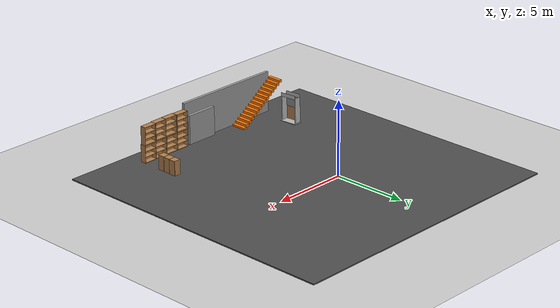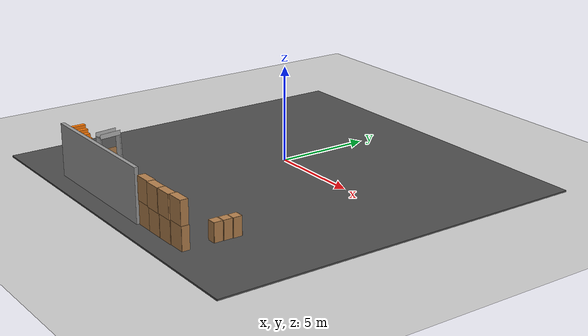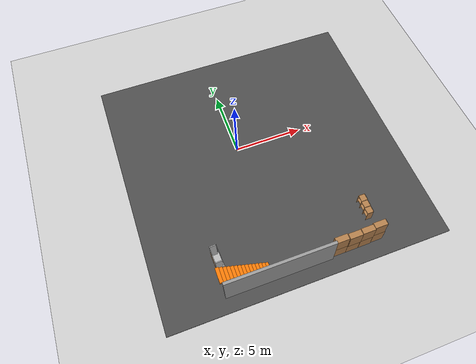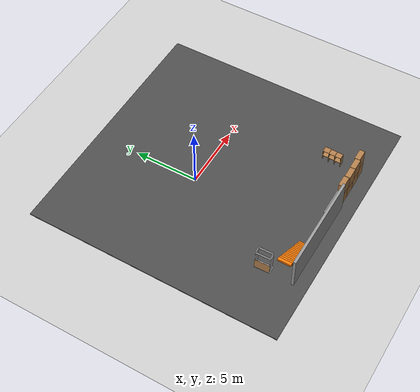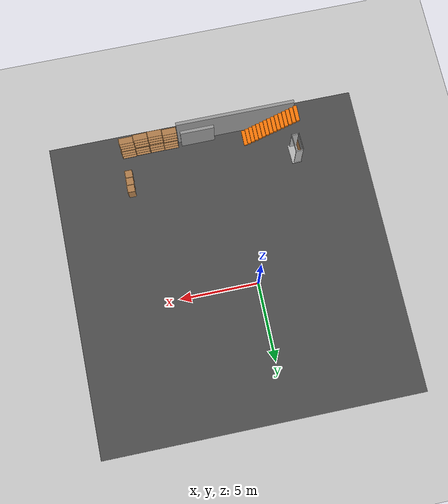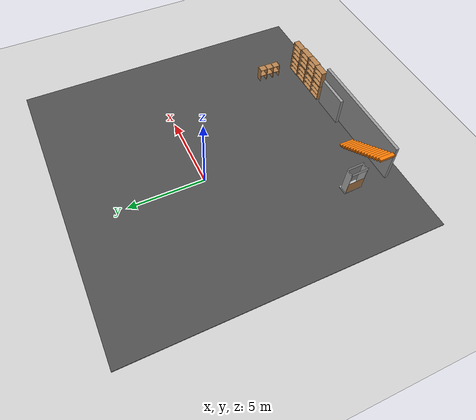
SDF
<sdf version="1.6">
 <world name="default">
  <model name="ground_plane">
   <static>1</static>
   <link name="link">
    <collision name="collision">
     <geometry><plane><normal>0 0 1</normal><size>100 100</size></plane></geometry>
     <surface>
      <contact><collide_bitmask>65535</collide_bitmask></contact>
      <friction><ode><mu>100</mu><mu2>50</mu2></ode></friction>
     </surface>
    </collision>
    <visual name="visual">
     <cast_shadows>0</cast_shadows>
     <geometry><plane><normal>0 0 1</normal><size>100 100</size></plane></geometry>
     <material>
      <script><uri>file://media/materials/scripts/gazebo.material</uri><name>Gazebo/Grey</name></script>
     </material>
    </visual>
   </link>
  </model>
  <model name="frc2016_drawbridge">
   <link name="base">
    <inertial>
     <mass>10</mass>
     <pose>0 0 1 0 -0 0</pose>
     <inertia><ixx>3.64907</ixx><ixy>0</ixy><ixz>0</ixz><iyy>4.67075</iyy><iyz>0</iyz><izz>1.66649</izz></inertia>
    </inertial>
    <visual name="platform">
     <pose>0 0 0.0425 0 -0 0</pose>
     <geometry><box><size>1.27 0.5969 0.085</size></box></geometry>
    </visual>
    <collision name="platform">
     <pose>0 0 0.0425 0 -0 0</pose>
     <geometry><box><size>1.27 0.5969 0.085</size></box></geometry>
    </collision>
    <visual name="right_wall">
     <pose>0.55879 0.04444 0.889 0 -0 0</pose>
     <geometry><box><size>0.05715 0.45698 1.77165</size></box></geometry>
    </visual>
    <collision name="right_wall">
     <pose>0.55879 0.04444 0.889 0 -0 0</pose>
     <geometry><box><size>0.05715 0.45698 1.77165</size></box></geometry>
    </collision>
    <visual name="left_wall">
     <pose>-0.55879 0.04444 0.889 0 -0 0</pose>
     <geometry><box><size>0.05715 0.45698 1.77165</size></box></geometry>
    </visual>
    <collision name="left_wall">
     <pose>-0.55879 0.04444 0.889 0 -0 0</pose>
     <geometry><box><size>0.05715 0.45698 1.77165</size></box></geometry>
    </collision>
    <visual name="front_upper_wall">
     <pose>0 0.27611 1.84286 0 -0 0</pose>
     <geometry><box><size>1.1557 0.006347 0.254</size></box></geometry>
    </visual>
    <collision name="front_upper_wall">
     <pose>0 0.27611 1.84286 0 -0 0</pose>
     <geometry><box><size>1.1557 0.006347 0.254</size></box></geometry>
    </collision>
    <visual name="back_upper_wall">
     <pose>0 -0.18722 1.84286 0 -0 0</pose>
     <geometry><box><size>1.1557 0.006347 0.254</size></box></geometry>
    </visual>
    <collision name="back_upper_wall">
     <pose>0 -0.18722 1.84286 0 -0 0</pose>
     <geometry><box><size>1.1557 0.006347 0.254</size></box></geometry>
    </collision>
   </link>
   <link name="bridge">
    <pose>0 0.28245 0.50577 0 -0 0</pose>
    <inertial>
     <mass>2</mass>
     <pose>0 -0.28245 -0.50577 0 -0 0</pose>
     <inertia>
      <ixx>0.139361</ixx>
      <ixy>0</ixy>
      <ixz>0</ixz>
      <iyy>0.357088</iyy>
      <iyz>0</iyz>
      <izz>0.217741</izz>
     </inertia>
    </inertial>
    <visual name="visual">
     <geometry><box><size>1.14298 0.006347 0.9144</size></box></geometry>
     <material><script><name>Gazebo/WoodFloor</name><uri>__default__</uri></script></material>
    </visual>
    <collision name="collision"><geometry><box><size>1.14298 0.006347 0.9144</size></box></geometry></collision>
   </link>
   <joint name="bridge_joint" type="revolute">
    <pose>0 0 -0.4172 0 -0 0</pose>
    <parent>base</parent>
    <child>bridge</child>
    <axis>
     <xyz>1 0 0</xyz>
     <limit><lower>-2</lower><upper>0</upper></limit>
     <use_parent_model_frame>0</use_parent_model_frame>
     <dynamics><spring_reference>0</spring_reference><spring_stiffness>0</spring_stiffness></dynamics>
    </axis>
   </joint>
   <pose>-4.11079 -7.91679 0 -0.010755 -0.031899 1.61279</pose>
  </model>
  <model name="bookshelf">
   <static>1</static>
   <link name="link">
    <inertial><mass>1</mass></inertial>
    <collision name="back">
     <pose>0 0.005 0.6 0 -0 0</pose>
     <geometry><box><size>0.9 0.01 1.2</size></box></geometry>
    </collision>
    <visual name="visual1">
     <pose>0 0.005 0.6 0 -0 0</pose>
     <geometry><box><size>0.9 0.01 1.2</size></box></geometry>
     <material>
      <script><uri>file://media/materials/scripts/gazebo.material</uri><name>Gazebo/Wood</name></script>
     </material>
    </visual>
    <collision name="left_side">
     <pose>0.45 -0.195 0.6 0 -0 0</pose>
     <geometry><box><size>0.02 0.4 1.2</size></box></geometry>
    </collision>
    <visual name="visual2">
     <pose>0.45 -0.195 0.6 0 -0 0</pose>
     <geometry><box><size>0.02 0.4 1.2</size></box></geometry>
     <material>
      <script><uri>file://media/materials/scripts/gazebo.material</uri><name>Gazebo/Wood</name></script>
     </material>
    </visual>
    <collision name="right_side">
     <pose>-0.45 -0.195 0.6 0 -0 0</pose>
     <geometry><box><size>0.02 0.4 1.2</size></box></geometry>
    </collision>
    <visual name="visual3">
     <pose>-0.45 -0.195 0.6 0 -0 0</pose>
     <geometry><box><size>0.02 0.4 1.2</size></box></geometry>
     <material>
      <script><uri>file://media/materials/scripts/gazebo.material</uri><name>Gazebo/Wood</name></script>
     </material>
    </visual>
    <collision name="bottom">
     <pose>0 -0.195 0.03 0 -0 0</pose>
     <geometry><box><size>0.88 0.4 0.06</size></box></geometry>
    </collision>
    <visual name="visual4">
     <pose>0 -0.195 0.03 0 -0 0</pose>
     <geometry><box><size>0.88 0.4 0.06</size></box></geometry>
     <material>
      <script><uri>file://media/materials/scripts/gazebo.material</uri><name>Gazebo/Wood</name></script>
     </material>
    </visual>
    <collision name="top">
     <pose>0 -0.195 1.19 0 -0 0</pose>
     <geometry><box><size>0.88 0.4 0.02</size></box></geometry>
    </collision>
    <visual name="visual5">
     <pose>0 -0.195 1.19 0 -0 0</pose>
     <geometry><box><size>0.88 0.4 0.02</size></box></geometry>
     <material>
      <script><uri>file://media/materials/scripts/gazebo.material</uri><name>Gazebo/Wood</name></script>
     </material>
    </visual>
    <collision name="low_shelf">
     <pose>0 -0.195 0.43 0 -0 0</pose>
     <geometry><box><size>0.88 0.4 0.02</size></box></geometry>
    </collision>
    <visual name="visual6">
     <pose>0 -0.195 0.43 0 -0 0</pose>
     <geometry><box><size>0.88 0.4 0.02</size></box></geometry>
     <material>
      <script><uri>file://media/materials/scripts/gazebo.material</uri><name>Gazebo/Wood</name></script>
     </material>
    </visual>
    <collision name="high_shelf">
     <pose>0 -0.195 0.8 0 -0 0</pose>
     <geometry><box><size>0.88 0.4 0.02</size></box></geometry>
    </collision>
    <visual name="visual7">
     <pose>0 -0.195 0.8 0 -0 0</pose>
     <geometry><box><size>0.88 0.4 0.02</size></box></geometry>
     <material>
      <script><uri>file://media/materials/scripts/gazebo.material</uri><name>Gazebo/Wood</name></script>
     </material>
    </visual>
   </link>
   <pose>6.34692 -10.2259 0.027497 0 0 -3.13702</pose>
  </model>
  <model name="bookshelf_clone">
   <static>1</static>
   <link name="link">
    <inertial><mass>1</mass></inertial>
    <collision name="back">
     <pose>0 0.005 0.6 0 -0 0</pose>
     <geometry><box><size>0.9 0.01 1.2</size></box></geometry>
    </collision>
    <visual name="visual1">
     <pose>0 0.005 0.6 0 -0 0</pose>
     <geometry><box><size>0.9 0.01 1.2</size></box></geometry>
     <material>
      <script><uri>file://media/materials/scripts/gazebo.material</uri><name>Gazebo/Wood</name></script>
     </material>
    </visual>
    <collision name="left_side">
     <pose>0.45 -0.195 0.6 0 -0 0</pose>
     <geometry><box><size>0.02 0.4 1.2</size></box></geometry>
    </collision>
    <visual name="visual2">
     <pose>0.45 -0.195 0.6 0 -0 0</pose>
     <geometry><box><size>0.02 0.4 1.2</size></box></geometry>
     <material>
      <script><uri>file://media/materials/scripts/gazebo.material</uri><name>Gazebo/Wood</name></script>
     </material>
    </visual>
    <collision name="right_side">
     <pose>-0.45 -0.195 0.6 0 -0 0</pose>
     <geometry><box><size>0.02 0.4 1.2</size></box></geometry>
    </collision>
    <visual name="visual3">
     <pose>-0.45 -0.195 0.6 0 -0 0</pose>
     <geometry><box><size>0.02 0.4 1.2</size></box></geometry>
     <material>
      <script><uri>file://media/materials/scripts/gazebo.material</uri><name>Gazebo/Wood</name></script>
     </material>
    </visual>
    <collision name="bottom">
     <pose>0 -0.195 0.03 0 -0 0</pose>
     <geometry><box><size>0.88 0.4 0.06</size></box></geometry>
    </collision>
    <visual name="visual4">
     <pose>0 -0.195 0.03 0 -0 0</pose>
     <geometry><box><size>0.88 0.4 0.06</size></box></geometry>
     <material>
      <script><uri>file://media/materials/scripts/gazebo.material</uri><name>Gazebo/Wood</name></script>
     </material>
    </visual>
    <collision name="top">
     <pose>0 -0.195 1.19 0 -0 0</pose>
     <geometry><box><size>0.88 0.4 0.02</size></box></geometry>
    </collision>
    <visual name="visual5">
     <pose>0 -0.195 1.19 0 -0 0</pose>
     <geometry><box><size>0.88 0.4 0.02</size></box></geometry>
     <material>
      <script><uri>file://media/materials/scripts/gazebo.material</uri><name>Gazebo/Wood</name></script>
     </material>
    </visual>
    <collision name="low_shelf">
     <pose>0 -0.195 0.43 0 -0 0</pose>
     <geometry><box><size>0.88 0.4 0.02</size></box></geometry>
    </collision>
    <visual name="visual6">
     <pose>0 -0.195 0.43 0 -0 0</pose>
     <geometry><box><size>0.88 0.4 0.02</size></box></geometry>
     <material>
      <script><uri>file://media/materials/scripts/gazebo.material</uri><name>Gazebo/Wood</name></script>
     </material>
    </visual>
    <collision name="high_shelf">
     <pose>0 -0.195 0.8 0 -0 0</pose>
     <geometry><box><size>0.88 0.4 0.02</size></box></geometry>
    </collision>
    <visual name="visual7">
     <pose>0 -0.195 0.8 0 -0 0</pose>
     <geometry><box><size>0.88 0.4 0.02</size></box></geometry>
     <material>
      <script><uri>file://media/materials/scripts/gazebo.material</uri><name>Gazebo/Wood</name></script>
     </material>
    </visual>
   </link>
   <pose>5.43755 -10.2582 0.027497 0 0 -3.13702</pose>
  </model>
  <model name="bookshelf_clone_clone">
   <static>1</static>
   <link name="link">
    <inertial><mass>1</mass></inertial>
    <collision name="back">
     <pose>0 0.005 0.6 0 -0 0</pose>
     <geometry><box><size>0.9 0.01 1.2</size></box></geometry>
    </collision>
    <visual name="visual1">
     <pose>0 0.005 0.6 0 -0 0</pose>
     <geometry><box><size>0.9 0.01 1.2</size></box></geometry>
     <material>
      <script><uri>file://media/materials/scripts/gazebo.material</uri><name>Gazebo/Wood</name></script>
     </material>
    </visual>
    <collision name="left_side">
     <pose>0.45 -0.195 0.6 0 -0 0</pose>
     <geometry><box><size>0.02 0.4 1.2</size></box></geometry>
    </collision>
    <visual name="visual2">
     <pose>0.45 -0.195 0.6 0 -0 0</pose>
     <geometry><box><size>0.02 0.4 1.2</size></box></geometry>
     <material>
      <script><uri>file://media/materials/scripts/gazebo.material</uri><name>Gazebo/Wood</name></script>
     </material>
    </visual>
    <collision name="right_side">
     <pose>-0.45 -0.195 0.6 0 -0 0</pose>
     <geometry><box><size>0.02 0.4 1.2</size></box></geometry>
    </collision>
    <visual name="visual3">
     <pose>-0.45 -0.195 0.6 0 -0 0</pose>
     <geometry><box><size>0.02 0.4 1.2</size></box></geometry>
     <material>
      <script><uri>file://media/materials/scripts/gazebo.material</uri><name>Gazebo/Wood</name></script>
     </material>
    </visual>
    <collision name="bottom">
     <pose>0 -0.195 0.03 0 -0 0</pose>
     <geometry><box><size>0.88 0.4 0.06</size></box></geometry>
    </collision>
    <visual name="visual4">
     <pose>0 -0.195 0.03 0 -0 0</pose>
     <geometry><box><size>0.88 0.4 0.06</size></box></geometry>
     <material>
      <script><uri>file://media/materials/scripts/gazebo.material</uri><name>Gazebo/Wood</name></script>
     </material>
    </visual>
    <collision name="top">
     <pose>0 -0.195 1.19 0 -0 0</pose>
     <geometry><box><size>0.88 0.4 0.02</size></box></geometry>
    </collision>
    <visual name="visual5">
     <pose>0 -0.195 1.19 0 -0 0</pose>
     <geometry><box><size>0.88 0.4 0.02</size></box></geometry>
     <material>
      <script><uri>file://media/materials/scripts/gazebo.material</uri><name>Gazebo/Wood</name></script>
     </material>
    </visual>
    <collision name="low_shelf">
     <pose>0 -0.195 0.43 0 -0 0</pose>
     <geometry><box><size>0.88 0.4 0.02</size></box></geometry>
    </collision>
    <visual name="visual6">
     <pose>0 -0.195 0.43 0 -0 0</pose>
     <geometry><box><size>0.88 0.4 0.02</size></box></geometry>
     <material>
      <script><uri>file://media/materials/scripts/gazebo.material</uri><name>Gazebo/Wood</name></script>
     </material>
    </visual>
    <collision name="high_shelf">
     <pose>0 -0.195 0.8 0 -0 0</pose>
     <geometry><box><size>0.88 0.4 0.02</size></box></geometry>
    </collision>
    <visual name="visual7">
     <pose>0 -0.195 0.8 0 -0 0</pose>
     <geometry><box><size>0.88 0.4 0.02</size></box></geometry>
     <material>
      <script><uri>file://media/materials/scripts/gazebo.material</uri><name>Gazebo/Wood</name></script>
     </material>
    </visual>
   </link>
   <pose>4.50546 -10.2639 0.027497 0 0 -3.13702</pose>
  </model>
  <model name="bookshelf_clone_clone_0">
   <static>1</static>
   <link name="link">
    <inertial><mass>1</mass></inertial>
    <collision name="back">
     <pose>0 0.005 0.6 0 -0 0</pose>
     <geometry><box><size>0.9 0.01 1.2</size></box></geometry>
    </collision>
    <visual name="visual1">
     <pose>0 0.005 0.6 0 -0 0</pose>
     <geometry><box><size>0.9 0.01 1.2</size></box></geometry>
     <material>
      <script><uri>file://media/materials/scripts/gazebo.material</uri><name>Gazebo/Wood</name></script>
     </material>
    </visual>
    <collision name="left_side">
     <pose>0.45 -0.195 0.6 0 -0 0</pose>
     <geometry><box><size>0.02 0.4 1.2</size></box></geometry>
    </collision>
    <visual name="visual2">
     <pose>0.45 -0.195 0.6 0 -0 0</pose>
     <geometry><box><size>0.02 0.4 1.2</size></box></geometry>
     <material>
      <script><uri>file://media/materials/scripts/gazebo.material</uri><name>Gazebo/Wood</name></script>
     </material>
    </visual>
    <collision name="right_side">
     <pose>-0.45 -0.195 0.6 0 -0 0</pose>
     <geometry><box><size>0.02 0.4 1.2</size></box></geometry>
    </collision>
    <visual name="visual3">
     <pose>-0.45 -0.195 0.6 0 -0 0</pose>
     <geometry><box><size>0.02 0.4 1.2</size></box></geometry>
     <material>
      <script><uri>file://media/materials/scripts/gazebo.material</uri><name>Gazebo/Wood</name></script>
     </material>
    </visual>
    <collision name="bottom">
     <pose>0 -0.195 0.03 0 -0 0</pose>
     <geometry><box><size>0.88 0.4 0.06</size></box></geometry>
    </collision>
    <visual name="visual4">
     <pose>0 -0.195 0.03 0 -0 0</pose>
     <geometry><box><size>0.88 0.4 0.06</size></box></geometry>
     <material>
      <script><uri>file://media/materials/scripts/gazebo.material</uri><name>Gazebo/Wood</name></script>
     </material>
    </visual>
    <collision name="top">
     <pose>0 -0.195 1.19 0 -0 0</pose>
     <geometry><box><size>0.88 0.4 0.02</size></box></geometry>
    </collision>
    <visual name="visual5">
     <pose>0 -0.195 1.19 0 -0 0</pose>
     <geometry><box><size>0.88 0.4 0.02</size></box></geometry>
     <material>
      <script><uri>file://media/materials/scripts/gazebo.material</uri><name>Gazebo/Wood</name></script>
     </material>
    </visual>
    <collision name="low_shelf">
     <pose>0 -0.195 0.43 0 -0 0</pose>
     <geometry><box><size>0.88 0.4 0.02</size></box></geometry>
    </collision>
    <visual name="visual6">
     <pose>0 -0.195 0.43 0 -0 0</pose>
     <geometry><box><size>0.88 0.4 0.02</size></box></geometry>
     <material>
      <script><uri>file://media/materials/scripts/gazebo.material</uri><name>Gazebo/Wood</name></script>
     </material>
    </visual>
    <collision name="high_shelf">
     <pose>0 -0.195 0.8 0 -0 0</pose>
     <geometry><box><size>0.88 0.4 0.02</size></box></geometry>
    </collision>
    <visual name="visual7">
     <pose>0 -0.195 0.8 0 -0 0</pose>
     <geometry><box><size>0.88 0.4 0.02</size></box></geometry>
     <material>
      <script><uri>file://media/materials/scripts/gazebo.material</uri><name>Gazebo/Wood</name></script>
     </material>
    </visual>
   </link>
   <pose>3.59893 -10.2632 0.027497 0 0 -3.13702</pose>
  </model>
  <model name="cabinet_clone_1">
   <static>1</static>
   <link name="cabinet_bottom_plate">
    <inertial>
     <pose>0 0 -1 0 -0 0</pose>
     <inertia><ixx>2.05</ixx><ixy>0</ixy><ixz>0</ixz><iyy>2.05</iyy><iyz>0</iyz><izz>2.05</izz></inertia>
     <mass>25</mass>
    </inertial>
    <collision name="cabinet_bottom_plate_geom">
     <pose>0 0 0.01 0 -0 0</pose>
     <geometry><box><size>0.45 0.45 0.02</size></box></geometry>
    </collision>
    <visual name="cabinet_bottom_plate_geom_visual">
     <pose>0 0 0.01 0 -0 0</pose>
     <geometry><box><size>0.45 0.45 0.02</size></box></geometry>
     <material>
      <script><uri>file://media/materials/scripts/gazebo.material</uri><name>Gazebo/Wood</name></script>
     </material>
    </visual>
    <collision name="cabinet_bottom_plate_geom_cabinet_back_plate">
     <pose>0.235 0 0.51 0 -0 0</pose>
     <geometry><box><size>0.02 0.45 1.02</size></box></geometry>
    </collision>
    <visual name="cabinet_bottom_plate_geom_cabinet_back_plate_visual">
     <pose>0.235 0 0.51 0 -0 0</pose>
     <geometry><box><size>0.02 0.45 1.02</size></box></geometry>
     <material>
      <script><uri>file://media/materials/scripts/gazebo.material</uri><name>Gazebo/Wood</name></script>
     </material>
    </visual>
    <collision name="cabinet_bottom_plate_geom_cabinet_left_plate">
     <pose>0 0.235 0.51 0 -0 0</pose>
     <geometry><box><size>0.45 0.02 1.02</size></box></geometry>
    </collision>
    <visual name="cabinet_bottom_plate_geom_cabinet_left_plate_visual">
     <pose>0 0.235 0.51 0 -0 0</pose>
     <geometry><box><size>0.45 0.02 1.02</size></box></geometry>
     <material>
      <script><uri>file://media/materials/scripts/gazebo.material</uri><name>Gazebo/Wood</name></script>
     </material>
    </visual>
    <collision name="cabinet_bottom_plate_geom_cabinet_middle_plate">
     <pose>0 0 0.51 0 -0 0</pose>
     <geometry><box><size>0.45 0.45 0.02</size></box></geometry>
    </collision>
    <visual name="cabinet_bottom_plate_geom_cabinet_middle_plate_visual">
     <pose>0 0 0.51 0 -0 0</pose>
     <geometry><box><size>0.45 0.45 0.02</size></box></geometry>
     <material>
      <script><uri>file://media/materials/scripts/gazebo.material</uri><name>Gazebo/Wood</name></script>
     </material>
    </visual>
    <collision name="cabinet_bottom_plate_geom_cabinet_right_plate">
     <pose>0 -0.235 0.51 0 -0 0</pose>
     <geometry><box><size>0.45 0.02 1.02</size></box></geometry>
    </collision>
    <visual name="cabinet_bottom_plate_geom_cabinet_right_plate_visual">
     <pose>0 -0.235 0.51 0 -0 0</pose>
     <geometry><box><size>0.45 0.02 1.02</size></box></geometry>
     <material>
      <script><uri>file://media/materials/scripts/gazebo.material</uri><name>Gazebo/Wood</name></script>
     </material>
    </visual>
    <collision name="cabinet_bottom_plate_geom_cabinet_top_plate">
     <pose>0 0 1.01 0 -0 0</pose>
     <geometry><box><size>0.45 0.45 0.02</size></box></geometry>
    </collision>
    <visual name="cabinet_bottom_plate_geom_cabinet_top_plate_visual">
     <pose>0 0 1.01 0 -0 0</pose>
     <geometry><box><size>0.45 0.45 0.02</size></box></geometry>
     <material>
      <script><uri>file://media/materials/scripts/gazebo.material</uri><name>Gazebo/Wood</name></script>
     </material>
    </visual>
   </link>
   <pose>6.62637 -7.40412 0 0 -0 0</pose>
  </model>
  <model name="cabinet_clone_2">
   <static>1</static>
   <link name="cabinet_bottom_plate">
    <inertial>
     <pose>0 0 -1 0 -0 0</pose>
     <inertia><ixx>2.05</ixx><ixy>0</ixy><ixz>0</ixz><iyy>2.05</iyy><iyz>0</iyz><izz>2.05</izz></inertia>
     <mass>25</mass>
    </inertial>
    <collision name="cabinet_bottom_plate_geom">
     <pose>0 0 0.01 0 -0 0</pose>
     <geometry><box><size>0.45 0.45 0.02</size></box></geometry>
    </collision>
    <visual name="cabinet_bottom_plate_geom_visual">
     <pose>0 0 0.01 0 -0 0</pose>
     <geometry><box><size>0.45 0.45 0.02</size></box></geometry>
     <material>
      <script><uri>file://media/materials/scripts/gazebo.material</uri><name>Gazebo/Wood</name></script>
     </material>
    </visual>
    <collision name="cabinet_bottom_plate_geom_cabinet_back_plate">
     <pose>0.235 0 0.51 0 -0 0</pose>
     <geometry><box><size>0.02 0.45 1.02</size></box></geometry>
    </collision>
    <visual name="cabinet_bottom_plate_geom_cabinet_back_plate_visual">
     <pose>0.235 0 0.51 0 -0 0</pose>
     <geometry><box><size>0.02 0.45 1.02</size></box></geometry>
     <material>
      <script><uri>file://media/materials/scripts/gazebo.material</uri><name>Gazebo/Wood</name></script>
     </material>
    </visual>
    <collision name="cabinet_bottom_plate_geom_cabinet_left_plate">
     <pose>0 0.235 0.51 0 -0 0</pose>
     <geometry><box><size>0.45 0.02 1.02</size></box></geometry>
    </collision>
    <visual name="cabinet_bottom_plate_geom_cabinet_left_plate_visual">
     <pose>0 0.235 0.51 0 -0 0</pose>
     <geometry><box><size>0.45 0.02 1.02</size></box></geometry>
     <material>
      <script><uri>file://media/materials/scripts/gazebo.material</uri><name>Gazebo/Wood</name></script>
     </material>
    </visual>
    <collision name="cabinet_bottom_plate_geom_cabinet_middle_plate">
     <pose>0 0 0.51 0 -0 0</pose>
     <geometry><box><size>0.45 0.45 0.02</size></box></geometry>
    </collision>
    <visual name="cabinet_bottom_plate_geom_cabinet_middle_plate_visual">
     <pose>0 0 0.51 0 -0 0</pose>
     <geometry><box><size>0.45 0.45 0.02</size></box></geometry>
     <material>
      <script><uri>file://media/materials/scripts/gazebo.material</uri><name>Gazebo/Wood</name></script>
     </material>
    </visual>
    <collision name="cabinet_bottom_plate_geom_cabinet_right_plate">
     <pose>0 -0.235 0.51 0 -0 0</pose>
     <geometry><box><size>0.45 0.02 1.02</size></box></geometry>
    </collision>
    <visual name="cabinet_bottom_plate_geom_cabinet_right_plate_visual">
     <pose>0 -0.235 0.51 0 -0 0</pose>
     <geometry><box><size>0.45 0.02 1.02</size></box></geometry>
     <material>
      <script><uri>file://media/materials/scripts/gazebo.material</uri><name>Gazebo/Wood</name></script>
     </material>
    </visual>
    <collision name="cabinet_bottom_plate_geom_cabinet_top_plate">
     <pose>0 0 1.01 0 -0 0</pose>
     <geometry><box><size>0.45 0.45 0.02</size></box></geometry>
    </collision>
    <visual name="cabinet_bottom_plate_geom_cabinet_top_plate_visual">
     <pose>0 0 1.01 0 -0 0</pose>
     <geometry><box><size>0.45 0.45 0.02</size></box></geometry>
     <material>
      <script><uri>file://media/materials/scripts/gazebo.material</uri><name>Gazebo/Wood</name></script>
     </material>
    </visual>
   </link>
   <pose>6.60812 -7.89179 0 0 -0 0</pose>
  </model>
  <model name="cabinet_clone_3">
   <static>1</static>
   <link name="cabinet_bottom_plate">
    <inertial>
     <pose>0 0 -1 0 -0 0</pose>
     <inertia><ixx>2.05</ixx><ixy>0</ixy><ixz>0</ixz><iyy>2.05</iyy><iyz>0</iyz><izz>2.05</izz></inertia>
     <mass>25</mass>
    </inertial>
    <collision name="cabinet_bottom_plate_geom">
     <pose>0 0 0.01 0 -0 0</pose>
     <geometry><box><size>0.45 0.45 0.02</size></box></geometry>
    </collision>
    <visual name="cabinet_bottom_plate_geom_visual">
     <pose>0 0 0.01 0 -0 0</pose>
     <geometry><box><size>0.45 0.45 0.02</size></box></geometry>
     <material>
      <script><uri>file://media/materials/scripts/gazebo.material</uri><name>Gazebo/Wood</name></script>
     </material>
    </visual>
    <collision name="cabinet_bottom_plate_geom_cabinet_back_plate">
     <pose>0.235 0 0.51 0 -0 0</pose>
     <geometry><box><size>0.02 0.45 1.02</size></box></geometry>
    </collision>
    <visual name="cabinet_bottom_plate_geom_cabinet_back_plate_visual">
     <pose>0.235 0 0.51 0 -0 0</pose>
     <geometry><box><size>0.02 0.45 1.02</size></box></geometry>
     <material>
      <script><uri>file://media/materials/scripts/gazebo.material</uri><name>Gazebo/Wood</name></script>
     </material>
    </visual>
    <collision name="cabinet_bottom_plate_geom_cabinet_left_plate">
     <pose>0 0.235 0.51 0 -0 0</pose>
     <geometry><box><size>0.45 0.02 1.02</size></box></geometry>
    </collision>
    <visual name="cabinet_bottom_plate_geom_cabinet_left_plate_visual">
     <pose>0 0.235 0.51 0 -0 0</pose>
     <geometry><box><size>0.45 0.02 1.02</size></box></geometry>
     <material>
      <script><uri>file://media/materials/scripts/gazebo.material</uri><name>Gazebo/Wood</name></script>
     </material>
    </visual>
    <collision name="cabinet_bottom_plate_geom_cabinet_middle_plate">
     <pose>0 0 0.51 0 -0 0</pose>
     <geometry><box><size>0.45 0.45 0.02</size></box></geometry>
    </collision>
    <visual name="cabinet_bottom_plate_geom_cabinet_middle_plate_visual">
     <pose>0 0 0.51 0 -0 0</pose>
     <geometry><box><size>0.45 0.45 0.02</size></box></geometry>
     <material>
      <script><uri>file://media/materials/scripts/gazebo.material</uri><name>Gazebo/Wood</name></script>
     </material>
    </visual>
    <collision name="cabinet_bottom_plate_geom_cabinet_right_plate">
     <pose>0 -0.235 0.51 0 -0 0</pose>
     <geometry><box><size>0.45 0.02 1.02</size></box></geometry>
    </collision>
    <visual name="cabinet_bottom_plate_geom_cabinet_right_plate_visual">
     <pose>0 -0.235 0.51 0 -0 0</pose>
     <geometry><box><size>0.45 0.02 1.02</size></box></geometry>
     <material>
      <script><uri>file://media/materials/scripts/gazebo.material</uri><name>Gazebo/Wood</name></script>
     </material>
    </visual>
    <collision name="cabinet_bottom_plate_geom_cabinet_top_plate">
     <pose>0 0 1.01 0 -0 0</pose>
     <geometry><box><size>0.45 0.45 0.02</size></box></geometry>
    </collision>
    <visual name="cabinet_bottom_plate_geom_cabinet_top_plate_visual">
     <pose>0 0 1.01 0 -0 0</pose>
     <geometry><box><size>0.45 0.45 0.02</size></box></geometry>
     <material>
      <script><uri>file://media/materials/scripts/gazebo.material</uri><name>Gazebo/Wood</name></script>
     </material>
    </visual>
   </link>
   <pose>6.59588 -8.38484 0 0 -0 0</pose>
  </model>
  <model name="grey_wall">
   <static>1</static>
   <link name="link">
    <pose>0 0 1.4 0 -0 0</pose>
    <collision name="collision"><geometry><box><size>7.5 0.2 2.8</size></box></geometry></collision>
    <visual name="visual">
     <cast_shadows>0</cast_shadows>
     <geometry><box><size>7.5 0.2 2.8</size></box></geometry>
     <material>
      <script>
       <uri>model://grey_wall/materials/scripts</uri>
       <uri>model://grey_wall/materials/textures</uri>
       <name>vrc/grey_wall</name>
      </script>
     </material>
    </visual>
   </link>
   <pose>-0.6582 -10.3022 0 0 -0 0</pose>
  </model>
  <model name="asphalt_plane">
   <static>1</static>
   <link name="link">
    <collision name="collision"><geometry><box><size>20 20 0.1</size></box></geometry></collision>
    <visual name="visual">
     <cast_shadows>0</cast_shadows>
     <geometry><box><size>20 20 0.1</size></box></geometry>
     <material>
      <script>
       <uri>model://asphalt_plane/materials/scripts</uri>
       <uri>model://asphalt_plane/materials/textures</uri>
       <name>vrc/asphalt</name>
      </script>
     </material>
    </visual>
   </link>
   <pose>1.41654 -1.37423 0 0 -0 0</pose>
  </model>
  <model name="bookshelf_clone_clone_clone_1_clone_0_clone_clone_clone_0">
   <static>1</static>
   <link name="link">
    <inertial><mass>1</mass></inertial>
    <collision name="back">
     <pose>0 0.005 0.6 0 -0 0</pose>
     <geometry><box><size>0.9 0.01 1.2</size></box></geometry>
    </collision>
    <visual name="visual1">
     <pose>0 0.005 0.6 0 -0 0</pose>
     <geometry><box><size>0.9 0.01 1.2</size></box></geometry>
     <material>
      <script><uri>file://media/materials/scripts/gazebo.material</uri><name>Gazebo/Wood</name></script>
     </material>
    </visual>
    <collision name="left_side">
     <pose>0.45 -0.195 0.6 0 -0 0</pose>
     <geometry><box><size>0.02 0.4 1.2</size></box></geometry>
    </collision>
    <visual name="visual2">
     <pose>0.45 -0.195 0.6 0 -0 0</pose>
     <geometry><box><size>0.02 0.4 1.2</size></box></geometry>
     <material>
      <script><uri>file://media/materials/scripts/gazebo.material</uri><name>Gazebo/Wood</name></script>
     </material>
    </visual>
    <collision name="right_side">
     <pose>-0.45 -0.195 0.6 0 -0 0</pose>
     <geometry><box><size>0.02 0.4 1.2</size></box></geometry>
    </collision>
    <visual name="visual3">
     <pose>-0.45 -0.195 0.6 0 -0 0</pose>
     <geometry><box><size>0.02 0.4 1.2</size></box></geometry>
     <material>
      <script><uri>file://media/materials/scripts/gazebo.material</uri><name>Gazebo/Wood</name></script>
     </material>
    </visual>
    <collision name="bottom">
     <pose>0 -0.195 0.03 0 -0 0</pose>
     <geometry><box><size>0.88 0.4 0.06</size></box></geometry>
    </collision>
    <visual name="visual4">
     <pose>0 -0.195 0.03 0 -0 0</pose>
     <geometry><box><size>0.88 0.4 0.06</size></box></geometry>
     <material>
      <script><uri>file://media/materials/scripts/gazebo.material</uri><name>Gazebo/Wood</name></script>
     </material>
    </visual>
    <collision name="top">
     <pose>0 -0.195 1.19 0 -0 0</pose>
     <geometry><box><size>0.88 0.4 0.02</size></box></geometry>
    </collision>
    <visual name="visual5">
     <pose>0 -0.195 1.19 0 -0 0</pose>
     <geometry><box><size>0.88 0.4 0.02</size></box></geometry>
     <material>
      <script><uri>file://media/materials/scripts/gazebo.material</uri><name>Gazebo/Wood</name></script>
     </material>
    </visual>
    <collision name="low_shelf">
     <pose>0 -0.195 0.43 0 -0 0</pose>
     <geometry><box><size>0.88 0.4 0.02</size></box></geometry>
    </collision>
    <visual name="visual6">
     <pose>0 -0.195 0.43 0 -0 0</pose>
     <geometry><box><size>0.88 0.4 0.02</size></box></geometry>
     <material>
      <script><uri>file://media/materials/scripts/gazebo.material</uri><name>Gazebo/Wood</name></script>
     </material>
    </visual>
    <collision name="high_shelf">
     <pose>0 -0.195 0.8 0 -0 0</pose>
     <geometry><box><size>0.88 0.4 0.02</size></box></geometry>
    </collision>
    <visual name="visual7">
     <pose>0 -0.195 0.8 0 -0 0</pose>
     <geometry><box><size>0.88 0.4 0.02</size></box></geometry>
     <material>
      <script><uri>file://media/materials/scripts/gazebo.material</uri><name>Gazebo/Wood</name></script>
     </material>
    </visual>
   </link>
   <pose>6.30434 -10.224 1.22391 0 0 -3.13702</pose>
  </model>
  <model name="bookshelf_clone_clone_clone_1_clone_0_clone_clone_clone_0_clone">
   <static>1</static>
   <link name="link">
    <inertial><mass>1</mass></inertial>
    <collision name="back">
     <pose>0 0.005 0.6 0 -0 0</pose>
     <geometry><box><size>0.9 0.01 1.2</size></box></geometry>
    </collision>
    <visual name="visual1">
     <pose>0 0.005 0.6 0 -0 0</pose>
     <geometry><box><size>0.9 0.01 1.2</size></box></geometry>
     <material>
      <script><uri>file://media/materials/scripts/gazebo.material</uri><name>Gazebo/Wood</name></script>
     </material>
    </visual>
    <collision name="left_side">
     <pose>0.45 -0.195 0.6 0 -0 0</pose>
     <geometry><box><size>0.02 0.4 1.2</size></box></geometry>
    </collision>
    <visual name="visual2">
     <pose>0.45 -0.195 0.6 0 -0 0</pose>
     <geometry><box><size>0.02 0.4 1.2</size></box></geometry>
     <material>
      <script><uri>file://media/materials/scripts/gazebo.material</uri><name>Gazebo/Wood</name></script>
     </material>
    </visual>
    <collision name="right_side">
     <pose>-0.45 -0.195 0.6 0 -0 0</pose>
     <geometry><box><size>0.02 0.4 1.2</size></box></geometry>
    </collision>
    <visual name="visual3">
     <pose>-0.45 -0.195 0.6 0 -0 0</pose>
     <geometry><box><size>0.02 0.4 1.2</size></box></geometry>
     <material>
      <script><uri>file://media/materials/scripts/gazebo.material</uri><name>Gazebo/Wood</name></script>
     </material>
    </visual>
    <collision name="bottom">
     <pose>0 -0.195 0.03 0 -0 0</pose>
     <geometry><box><size>0.88 0.4 0.06</size></box></geometry>
    </collision>
    <visual name="visual4">
     <pose>0 -0.195 0.03 0 -0 0</pose>
     <geometry><box><size>0.88 0.4 0.06</size></box></geometry>
     <material>
      <script><uri>file://media/materials/scripts/gazebo.material</uri><name>Gazebo/Wood</name></script>
     </material>
    </visual>
    <collision name="top">
     <pose>0 -0.195 1.19 0 -0 0</pose>
     <geometry><box><size>0.88 0.4 0.02</size></box></geometry>
    </collision>
    <visual name="visual5">
     <pose>0 -0.195 1.19 0 -0 0</pose>
     <geometry><box><size>0.88 0.4 0.02</size></box></geometry>
     <material>
      <script><uri>file://media/materials/scripts/gazebo.material</uri><name>Gazebo/Wood</name></script>
     </material>
    </visual>
    <collision name="low_shelf">
     <pose>0 -0.195 0.43 0 -0 0</pose>
     <geometry><box><size>0.88 0.4 0.02</size></box></geometry>
    </collision>
    <visual name="visual6">
     <pose>0 -0.195 0.43 0 -0 0</pose>
     <geometry><box><size>0.88 0.4 0.02</size></box></geometry>
     <material>
      <script><uri>file://media/materials/scripts/gazebo.material</uri><name>Gazebo/Wood</name></script>
     </material>
    </visual>
    <collision name="high_shelf">
     <pose>0 -0.195 0.8 0 -0 0</pose>
     <geometry><box><size>0.88 0.4 0.02</size></box></geometry>
    </collision>
    <visual name="visual7">
     <pose>0 -0.195 0.8 0 -0 0</pose>
     <geometry><box><size>0.88 0.4 0.02</size></box></geometry>
     <material>
      <script><uri>file://media/materials/scripts/gazebo.material</uri><name>Gazebo/Wood</name></script>
     </material>
    </visual>
   </link>
   <pose>5.4143 -10.2944 1.22391 0 0 -3.13702</pose>
  </model>
  <model name="bookshelf_clone_clone_clone_1_clone_0_clone_clone_clone_0_clone_0">
   <static>1</static>
   <link name="link">
    <inertial><mass>1</mass></inertial>
    <collision name="back">
     <pose>0 0.005 0.6 0 -0 0</pose>
     <geometry><box><size>0.9 0.01 1.2</size></box></geometry>
    </collision>
    <visual name="visual1">
     <pose>0 0.005 0.6 0 -0 0</pose>
     <geometry><box><size>0.9 0.01 1.2</size></box></geometry>
     <material>
      <script><uri>file://media/materials/scripts/gazebo.material</uri><name>Gazebo/Wood</name></script>
     </material>
    </visual>
    <collision name="left_side">
     <pose>0.45 -0.195 0.6 0 -0 0</pose>
     <geometry><box><size>0.02 0.4 1.2</size></box></geometry>
    </collision>
    <visual name="visual2">
     <pose>0.45 -0.195 0.6 0 -0 0</pose>
     <geometry><box><size>0.02 0.4 1.2</size></box></geometry>
     <material>
      <script><uri>file://media/materials/scripts/gazebo.material</uri><name>Gazebo/Wood</name></script>
     </material>
    </visual>
    <collision name="right_side">
     <pose>-0.45 -0.195 0.6 0 -0 0</pose>
     <geometry><box><size>0.02 0.4 1.2</size></box></geometry>
    </collision>
    <visual name="visual3">
     <pose>-0.45 -0.195 0.6 0 -0 0</pose>
     <geometry><box><size>0.02 0.4 1.2</size></box></geometry>
     <material>
      <script><uri>file://media/materials/scripts/gazebo.material</uri><name>Gazebo/Wood</name></script>
     </material>
    </visual>
    <collision name="bottom">
     <pose>0 -0.195 0.03 0 -0 0</pose>
     <geometry><box><size>0.88 0.4 0.06</size></box></geometry>
    </collision>
    <visual name="visual4">
     <pose>0 -0.195 0.03 0 -0 0</pose>
     <geometry><box><size>0.88 0.4 0.06</size></box></geometry>
     <material>
      <script><uri>file://media/materials/scripts/gazebo.material</uri><name>Gazebo/Wood</name></script>
     </material>
    </visual>
    <collision name="top">
     <pose>0 -0.195 1.19 0 -0 0</pose>
     <geometry><box><size>0.88 0.4 0.02</size></box></geometry>
    </collision>
    <visual name="visual5">
     <pose>0 -0.195 1.19 0 -0 0</pose>
     <geometry><box><size>0.88 0.4 0.02</size></box></geometry>
     <material>
      <script><uri>file://media/materials/scripts/gazebo.material</uri><name>Gazebo/Wood</name></script>
     </material>
    </visual>
    <collision name="low_shelf">
     <pose>0 -0.195 0.43 0 -0 0</pose>
     <geometry><box><size>0.88 0.4 0.02</size></box></geometry>
    </collision>
    <visual name="visual6">
     <pose>0 -0.195 0.43 0 -0 0</pose>
     <geometry><box><size>0.88 0.4 0.02</size></box></geometry>
     <material>
      <script><uri>file://media/materials/scripts/gazebo.material</uri><name>Gazebo/Wood</name></script>
     </material>
    </visual>
    <collision name="high_shelf">
     <pose>0 -0.195 0.8 0 -0 0</pose>
     <geometry><box><size>0.88 0.4 0.02</size></box></geometry>
    </collision>
    <visual name="visual7">
     <pose>0 -0.195 0.8 0 -0 0</pose>
     <geometry><box><size>0.88 0.4 0.02</size></box></geometry>
     <material>
      <script><uri>file://media/materials/scripts/gazebo.material</uri><name>Gazebo/Wood</name></script>
     </material>
    </visual>
   </link>
   <pose>4.49862 -10.3184 1.22391 0 0 -3.13702</pose>
  </model>
  <model name="bookshelf_clone_clone_clone_1_clone_0_clone_clone_clone_0_clone_0_clone">
   <static>1</static>
   <link name="link">
    <inertial><mass>1</mass></inertial>
    <collision name="back">
     <pose>0 0.005 0.6 0 -0 0</pose>
     <geometry><box><size>0.9 0.01 1.2</size></box></geometry>
    </collision>
    <visual name="visual1">
     <pose>0 0.005 0.6 0 -0 0</pose>
     <geometry><box><size>0.9 0.01 1.2</size></box></geometry>
     <material>
      <script><uri>file://media/materials/scripts/gazebo.material</uri><name>Gazebo/Wood</name></script>
     </material>
    </visual>
    <collision name="left_side">
     <pose>0.45 -0.195 0.6 0 -0 0</pose>
     <geometry><box><size>0.02 0.4 1.2</size></box></geometry>
    </collision>
    <visual name="visual2">
     <pose>0.45 -0.195 0.6 0 -0 0</pose>
     <geometry><box><size>0.02 0.4 1.2</size></box></geometry>
     <material>
      <script><uri>file://media/materials/scripts/gazebo.material</uri><name>Gazebo/Wood</name></script>
     </material>
    </visual>
    <collision name="right_side">
     <pose>-0.45 -0.195 0.6 0 -0 0</pose>
     <geometry><box><size>0.02 0.4 1.2</size></box></geometry>
    </collision>
    <visual name="visual3">
     <pose>-0.45 -0.195 0.6 0 -0 0</pose>
     <geometry><box><size>0.02 0.4 1.2</size></box></geometry>
     <material>
      <script><uri>file://media/materials/scripts/gazebo.material</uri><name>Gazebo/Wood</name></script>
     </material>
    </visual>
    <collision name="bottom">
     <pose>0 -0.195 0.03 0 -0 0</pose>
     <geometry><box><size>0.88 0.4 0.06</size></box></geometry>
    </collision>
    <visual name="visual4">
     <pose>0 -0.195 0.03 0 -0 0</pose>
     <geometry><box><size>0.88 0.4 0.06</size></box></geometry>
     <material>
      <script><uri>file://media/materials/scripts/gazebo.material</uri><name>Gazebo/Wood</name></script>
     </material>
    </visual>
    <collision name="top">
     <pose>0 -0.195 1.19 0 -0 0</pose>
     <geometry><box><size>0.88 0.4 0.02</size></box></geometry>
    </collision>
    <visual name="visual5">
     <pose>0 -0.195 1.19 0 -0 0</pose>
     <geometry><box><size>0.88 0.4 0.02</size></box></geometry>
     <material>
      <script><uri>file://media/materials/scripts/gazebo.material</uri><name>Gazebo/Wood</name></script>
     </material>
    </visual>
    <collision name="low_shelf">
     <pose>0 -0.195 0.43 0 -0 0</pose>
     <geometry><box><size>0.88 0.4 0.02</size></box></geometry>
    </collision>
    <visual name="visual6">
     <pose>0 -0.195 0.43 0 -0 0</pose>
     <geometry><box><size>0.88 0.4 0.02</size></box></geometry>
     <material>
      <script><uri>file://media/materials/scripts/gazebo.material</uri><name>Gazebo/Wood</name></script>
     </material>
    </visual>
    <collision name="high_shelf">
     <pose>0 -0.195 0.8 0 -0 0</pose>
     <geometry><box><size>0.88 0.4 0.02</size></box></geometry>
    </collision>
    <visual name="visual7">
     <pose>0 -0.195 0.8 0 -0 0</pose>
     <geometry><box><size>0.88 0.4 0.02</size></box></geometry>
     <material>
      <script><uri>file://media/materials/scripts/gazebo.material</uri><name>Gazebo/Wood</name></script>
     </material>
    </visual>
   </link>
   <pose>3.57647 -10.2753 1.22391 0 0 -3.13702</pose>
  </model>
  <model name="Untitled">
   <pose>-2.79043 -9.61615 0 0 -0 0</pose>
   <link name="Door_1">
    <collision name="Door_1_Collision">
     <geometry><box><size>2.15405 0.2 2</size></box></geometry>
     <pose>0 0 1 0 -0 0</pose>
    </collision>
    <visual name="Door_1_Visual">
     <pose>0 0 1 0 -0 0</pose>
     <geometry><box><size>2.15405 0.2 2</size></box></geometry>
     <material>
      <script><uri>file://media/materials/scripts/gazebo.material</uri><name>Gazebo/Grey</name></script>
     </material>
    </visual>
    <pose>4.62883 -0.41284 0 0 0 -3.14004</pose>
   </link>
   <link name="Stairs_0">
    <visual name="Stairs_0_Visual_0">
     <pose>1.63333 0 0.083333 0 -0 -1.5708</pose>
     <geometry><box><size>1 0.233333 0.166667</size></box></geometry>
     <material>
      <script><uri>file://media/materials/scripts/gazebo.material</uri><name>Gazebo/Grey</name></script>
      <ambient>0.996078 0.47451 0.0196078 1</ambient>
     </material>
     <meta><layer>0</layer></meta>
    </visual>
    <collision name="Stairs_0_Collision_0">
     <geometry><box><size>1 0.233333 0.166667</size></box></geometry>
     <pose>1.63333 0 0.083333 0 -0 -1.5708</pose>
    </collision>
    <visual name="Stairs_0_Visual_1">
     <pose>1.4 0 0.25 0 -0 -1.5708</pose>
     <geometry><box><size>1 0.233333 0.166667</size></box></geometry>
     <material>
      <script><uri>file://media/materials/scripts/gazebo.material</uri><name>Gazebo/Grey</name></script>
      <ambient>0.996078 0.47451 0.0196078 1</ambient>
     </material>
     <meta><layer>0</layer></meta>
    </visual>
    <collision name="Stairs_0_Collision_1">
     <geometry><box><size>1 0.233333 0.166667</size></box></geometry>
     <pose>1.4 0 0.25 0 -0 -1.5708</pose>
    </collision>
    <visual name="Stairs_0_Visual_2">
     <pose>1.16667 0 0.416667 0 -0 -1.5708</pose>
     <geometry><box><size>1 0.233333 0.166667</size></box></geometry>
     <material>
      <script><uri>file://media/materials/scripts/gazebo.material</uri><name>Gazebo/Grey</name></script>
      <ambient>0.996078 0.47451 0.0196078 1</ambient>
     </material>
     <meta><layer>0</layer></meta>
    </visual>
    <collision name="Stairs_0_Collision_2">
     <geometry><box><size>1 0.233333 0.166667</size></box></geometry>
     <pose>1.16667 0 0.416667 0 -0 -1.5708</pose>
    </collision>
    <visual name="Stairs_0_Visual_3">
     <pose>0.933333 0 0.583333 0 -0 -1.5708</pose>
     <geometry><box><size>1 0.233333 0.166667</size></box></geometry>
     <material>
      <script><uri>file://media/materials/scripts/gazebo.material</uri><name>Gazebo/Grey</name></script>
      <ambient>0.996078 0.47451 0.0196078 1</ambient>
     </material>
     <meta><layer>0</layer></meta>
    </visual>
    <collision name="Stairs_0_Collision_3">
     <geometry><box><size>1 0.233333 0.166667</size></box></geometry>
     <pose>0.933333 0 0.583333 0 -0 -1.5708</pose>
    </collision>
    <visual name="Stairs_0_Visual_4">
     <pose>0.7 0 0.75 0 -0 -1.5708</pose>
     <geometry><box><size>1 0.233333 0.166667</size></box></geometry>
     <material>
      <script><uri>file://media/materials/scripts/gazebo.material</uri><name>Gazebo/Grey</name></script>
      <ambient>0.996078 0.47451 0.0196078 1</ambient>
     </material>
     <meta><layer>0</layer></meta>
    </visual>
    <collision name="Stairs_0_Collision_4">
     <geometry><box><size>1 0.233333 0.166667</size></box></geometry>
     <pose>0.7 0 0.75 0 -0 -1.5708</pose>
    </collision>
    <visual name="Stairs_0_Visual_5">
     <pose>0.466667 0 0.916667 0 -0 -1.5708</pose>
     <geometry><box><size>1 0.233333 0.166667</size></box></geometry>
     <material>
      <script><uri>file://media/materials/scripts/gazebo.material</uri><name>Gazebo/Grey</name></script>
      <ambient>0.996078 0.47451 0.0196078 1</ambient>
     </material>
     <meta><layer>0</layer></meta>
    </visual>
    <collision name="Stairs_0_Collision_5">
     <geometry><box><size>1 0.233333 0.166667</size></box></geometry>
     <pose>0.466667 0 0.916667 0 -0 -1.5708</pose>
    </collision>
    <visual name="Stairs_0_Visual_6">
     <pose>0.233333 0 1.08333 0 -0 -1.5708</pose>
     <geometry><box><size>1 0.233333 0.166667</size></box></geometry>
     <material>
      <script><uri>file://media/materials/scripts/gazebo.material</uri><name>Gazebo/Grey</name></script>
      <ambient>0.996078 0.47451 0.0196078 1</ambient>
     </material>
     <meta><layer>0</layer></meta>
    </visual>
    <collision name="Stairs_0_Collision_6">
     <geometry><box><size>1 0.233333 0.166667</size></box></geometry>
     <pose>0.233333 0 1.08333 0 -0 -1.5708</pose>
    </collision>
    <visual name="Stairs_0_Visual_7">
     <pose>-0 0 1.25 0 -0 -1.5708</pose>
     <geometry><box><size>1 0.233333 0.166667</size></box></geometry>
     <material>
      <script><uri>file://media/materials/scripts/gazebo.material</uri><name>Gazebo/Grey</name></script>
      <ambient>0.996078 0.47451 0.0196078 1</ambient>
     </material>
     <meta><layer>0</layer></meta>
    </visual>
    <collision name="Stairs_0_Collision_7">
     <geometry><box><size>1 0.233333 0.166667</size></box></geometry>
     <pose>-0 0 1.25 0 -0 -1.5708</pose>
    </collision>
    <visual name="Stairs_0_Visual_8">
     <pose>-0.233333 0 1.41667 0 -0 -1.5708</pose>
     <geometry><box><size>1 0.233333 0.166667</size></box></geometry>
     <material>
      <script><uri>file://media/materials/scripts/gazebo.material</uri><name>Gazebo/Grey</name></script>
      <ambient>0.996078 0.47451 0.0196078 1</ambient>
     </material>
     <meta><layer>0</layer></meta>
    </visual>
    <collision name="Stairs_0_Collision_8">
     <geometry><box><size>1 0.233333 0.166667</size></box></geometry>
     <pose>-0.233333 0 1.41667 0 -0 -1.5708</pose>
    </collision>
    <visual name="Stairs_0_Visual_9">
     <pose>-0.466667 0 1.58333 0 -0 -1.5708</pose>
     <geometry><box><size>1 0.233333 0.166667</size></box></geometry>
     <material>
      <script><uri>file://media/materials/scripts/gazebo.material</uri><name>Gazebo/Grey</name></script>
      <ambient>0.996078 0.47451 0.0196078 1</ambient>
     </material>
     <meta><layer>0</layer></meta>
    </visual>
    <collision name="Stairs_0_Collision_9">
     <geometry><box><size>1 0.233333 0.166667</size></box></geometry>
     <pose>-0.466667 0 1.58333 0 -0 -1.5708</pose>
    </collision>
    <visual name="Stairs_0_Visual_10">
     <pose>-0.7 0 1.75 0 -0 -1.5708</pose>
     <geometry><box><size>1 0.233333 0.166667</size></box></geometry>
     <material>
      <script><uri>file://media/materials/scripts/gazebo.material</uri><name>Gazebo/Grey</name></script>
      <ambient>0.996078 0.47451 0.0196078 1</ambient>
     </material>
     <meta><layer>0</layer></meta>
    </visual>
    <collision name="Stairs_0_Collision_10">
     <geometry><box><size>1 0.233333 0.166667</size></box></geometry>
     <pose>-0.7 0 1.75 0 -0 -1.5708</pose>
    </collision>
    <visual name="Stairs_0_Visual_11">
     <pose>-0.933334 0 1.91667 0 -0 -1.5708</pose>
     <geometry><box><size>1 0.233333 0.166667</size></box></geometry>
     <material>
      <script><uri>file://media/materials/scripts/gazebo.material</uri><name>Gazebo/Grey</name></script>
      <ambient>0.996078 0.47451 0.0196078 1</ambient>
     </material>
     <meta><layer>0</layer></meta>
    </visual>
    <collision name="Stairs_0_Collision_11">
     <geometry><box><size>1 0.233333 0.166667</size></box></geometry>
     <pose>-0.933334 0 1.91667 0 -0 -1.5708</pose>
    </collision>
    <visual name="Stairs_0_Visual_12">
     <pose>-1.16667 0 2.08333 0 -0 -1.5708</pose>
     <geometry><box><size>1 0.233333 0.166667</size></box></geometry>
     <material>
      <script><uri>file://media/materials/scripts/gazebo.material</uri><name>Gazebo/Grey</name></script>
      <ambient>0.996078 0.47451 0.0196078 1</ambient>
     </material>
     <meta><layer>0</layer></meta>
    </visual>
    <collision name="Stairs_0_Collision_12">
     <geometry><box><size>1 0.233333 0.166667</size></box></geometry>
     <pose>-1.16667 0 2.08333 0 -0 -1.5708</pose>
    </collision>
    <visual name="Stairs_0_Visual_13">
     <pose>-1.4 0 2.25 0 -0 -1.5708</pose>
     <geometry><box><size>1 0.233333 0.166667</size></box></geometry>
     <material>
      <script><uri>file://media/materials/scripts/gazebo.material</uri><name>Gazebo/Grey</name></script>
      <ambient>0.996078 0.47451 0.0196078 1</ambient>
     </material>
     <meta><layer>0</layer></meta>
    </visual>
    <collision name="Stairs_0_Collision_13">
     <geometry><box><size>1 0.233333 0.166667</size></box></geometry>
     <pose>-1.4 0 2.25 0 -0 -1.5708</pose>
    </collision>
    <visual name="Stairs_0_Visual_14">
     <pose>-1.63333 0 2.41667 0 -0 -1.5708</pose>
     <geometry><box><size>1 0.233333 0.166667</size></box></geometry>
     <material>
      <script><uri>file://media/materials/scripts/gazebo.material</uri><name>Gazebo/Grey</name></script>
      <ambient>0.996078 0.47451 0.0196078 1</ambient>
     </material>
     <meta><layer>0</layer></meta>
    </visual>
    <collision name="Stairs_0_Collision_14">
     <geometry><box><size>1 0.233333 0.166667</size></box></geometry>
     <pose>-1.63333 0 2.41667 0 -0 -1.5708</pose>
    </collision>
   </link>
   <static>1</static>
  </model>
 </world>
</sdf>
